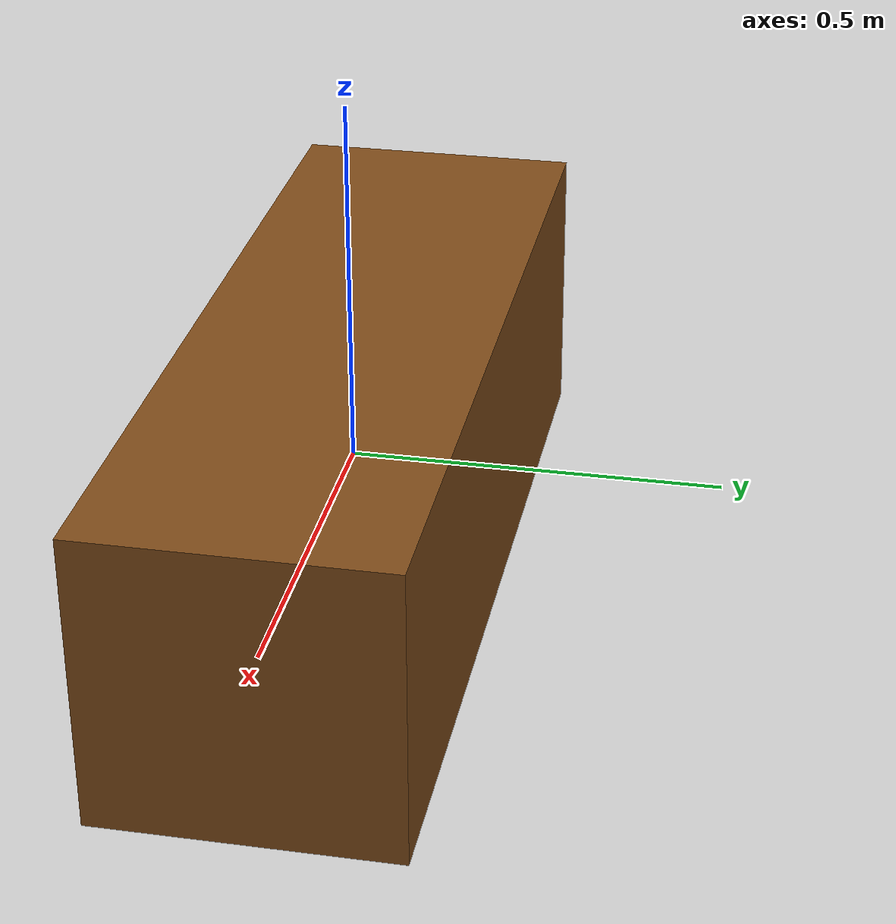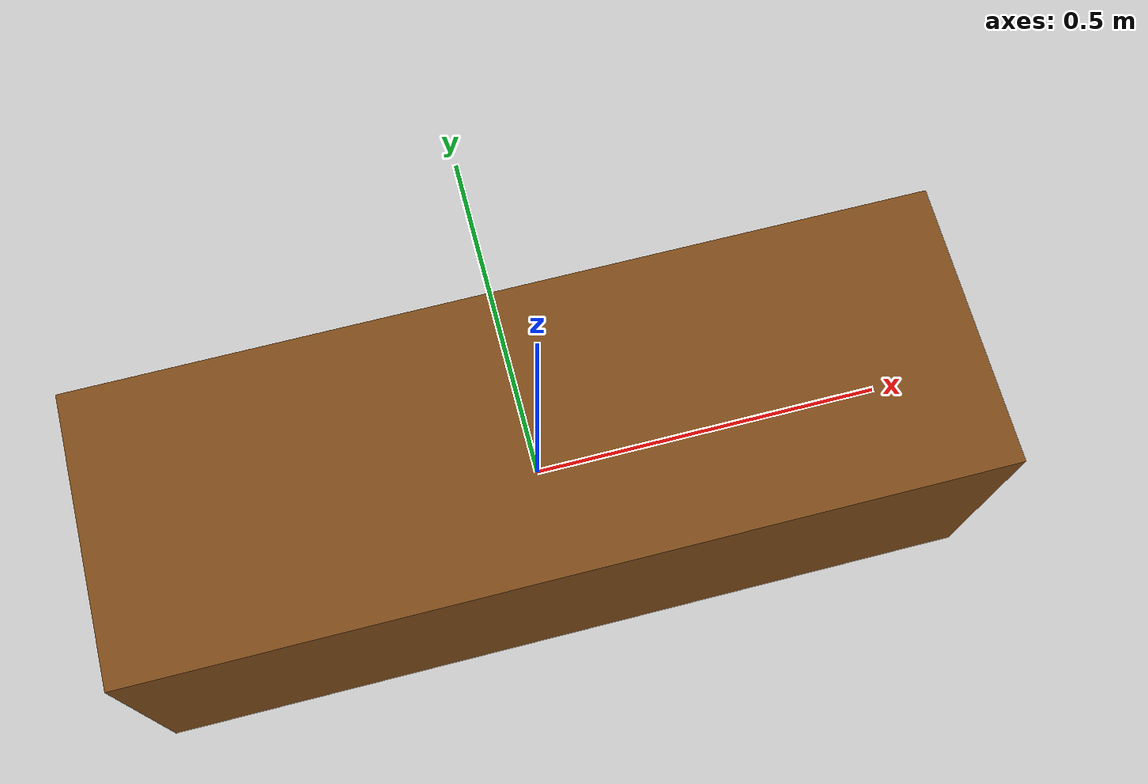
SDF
<?xml version="1.0" ?>
<sdf version="1.6">
  <model name="bench">
    <static>true</static>
    <link name="link">
      <collision name="collision">
        <geometry>
          <box>
            <size>1.2 0.4 0.4</size>
          </box>
        </geometry>
      </collision>
      <visual name="visual">
        <geometry>
          <box>
            <size>1.2 0.4 0.4</size>
          </box>
        </geometry>
        <material>
          <ambient>0.5 0.3 0.1 1</ambient>
          <diffuse>0.5 0.3 0.1 1</diffuse>
        </material>
      </visual>
    </link>
  </model>
</sdf>
